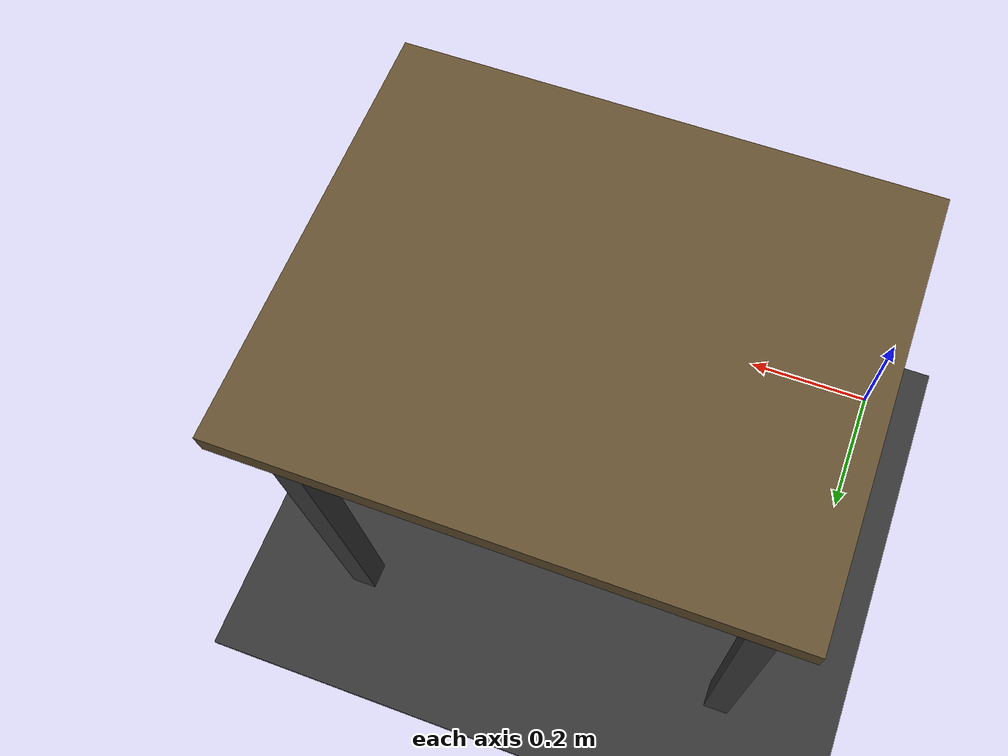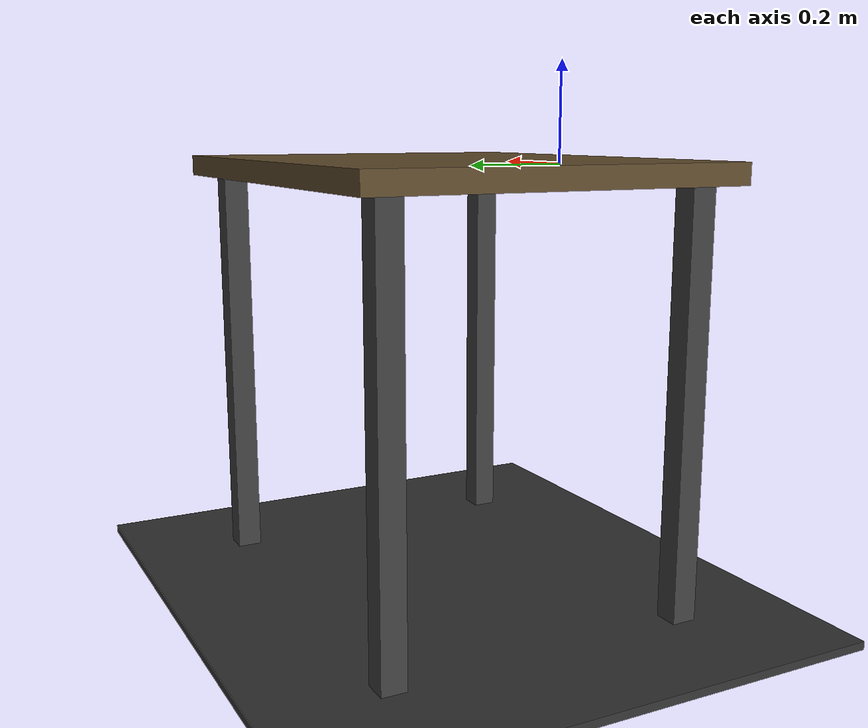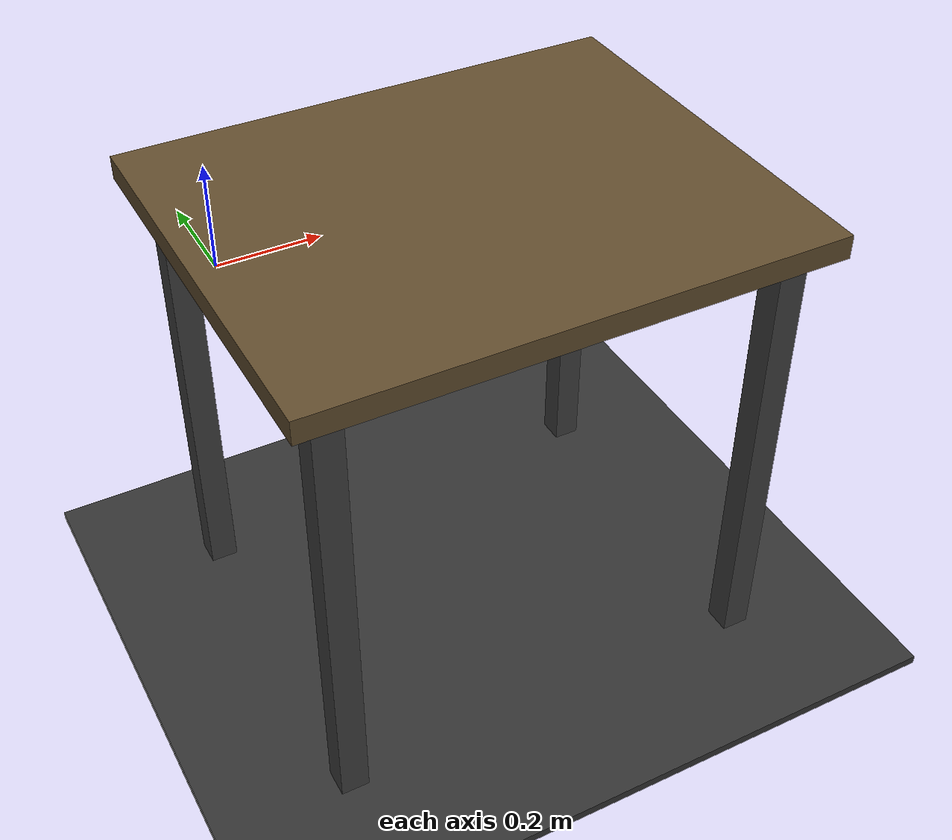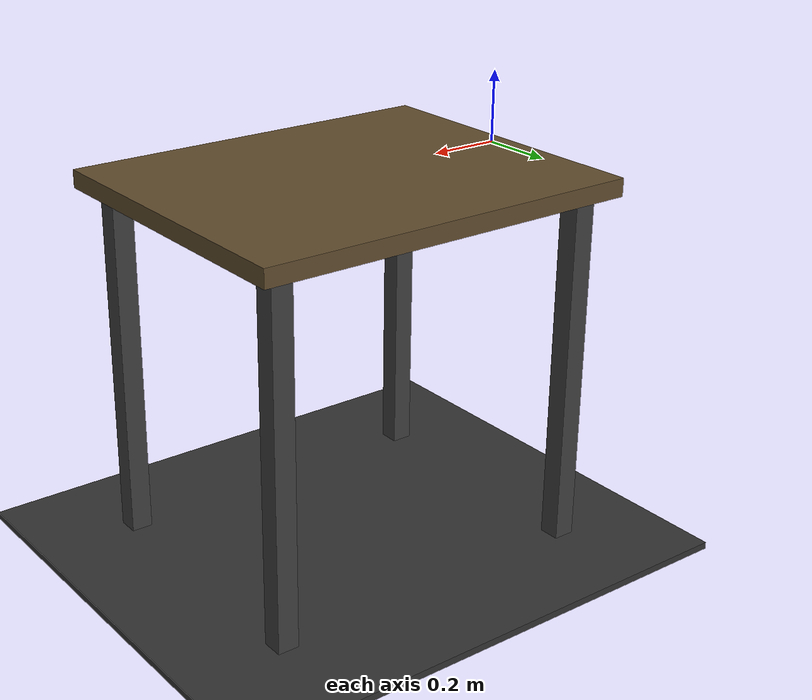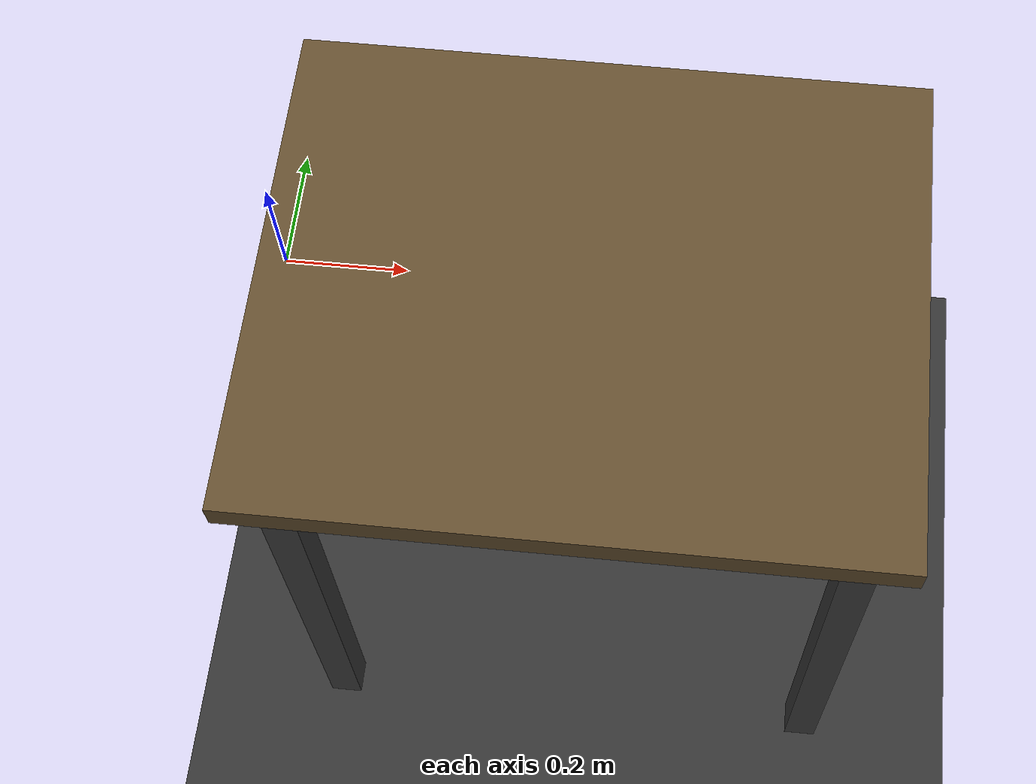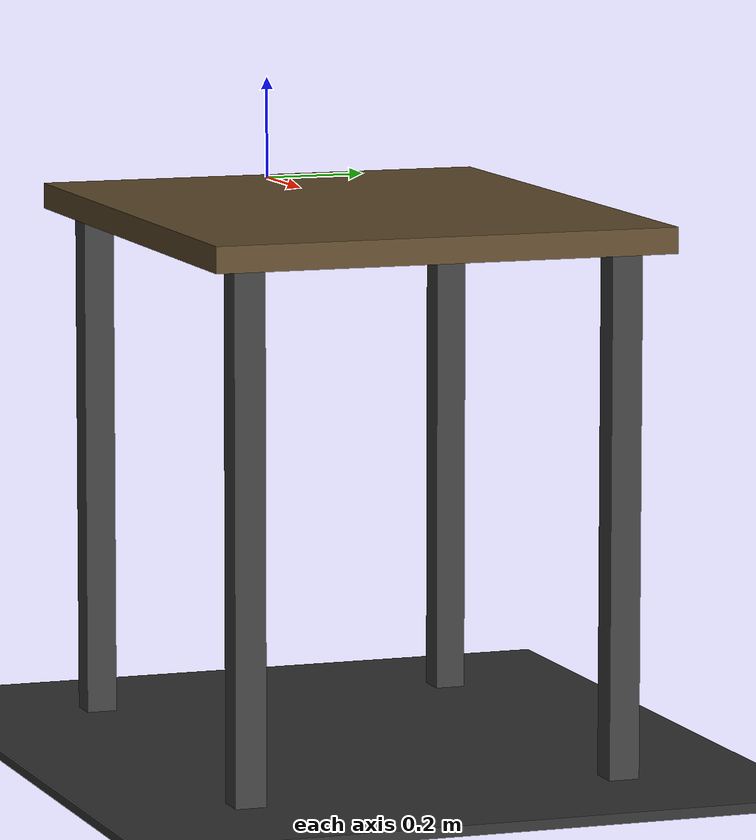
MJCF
<mujoco model="franka_scene">
  <option timestep="0.002" gravity="0 0 -9.81" integrator="implicitfast" iterations="50" />
  <visual>
    <map znear="0.005" zfar="10" />
  </visual>
  <worldbody>
    <light name="sun" mode="fixed" pos="1.0 -1.0 2.0" dir="-0.3 0.2 -1.0" />
    <camera name="overview" pos="1.0 -1.0 0.8" xyaxes="1 0 0 0 0 1" />
    <geom name="ground" type="box" pos="0 0 -1.06" size="2 2 0.01" rgba="0.2 0.2 0.2 1" friction="1 0.01 0.001" contype="1" conaffinity="1" />
    <geom name="table_top" type="box" pos="0.5 0 -0.025" size="0.55 0.45 0.025" rgba="0.38 0.3 0.18 1" friction="1 0.01 0.001" contype="1" conaffinity="1" />
    <geom name="table_leg_front_left" type="box" pos="0.03 0.37 -0.55" size="0.03 0.03 0.5" rgba="0.25 0.25 0.25 1" friction="1 0.01 0.001" contype="1" conaffinity="1" />
    <geom name="table_leg_front_right" type="box" pos="0.03 -0.37 -0.55" size="0.03 0.03 0.5" rgba="0.25 0.25 0.25 1" friction="1 0.01 0.001" contype="1" conaffinity="1" />
    <geom name="table_leg_back_left" type="box" pos="0.97 0.37 -0.55" size="0.03 0.03 0.5" rgba="0.25 0.25 0.25 1" friction="1 0.01 0.001" contype="1" conaffinity="1" />
    <geom name="table_leg_back_right" type="box" pos="0.97 -0.37 -0.55" size="0.03 0.03 0.5" rgba="0.25 0.25 0.25 1" friction="1 0.01 0.001" contype="1" conaffinity="1" />
  </worldbody>
</mujoco>
